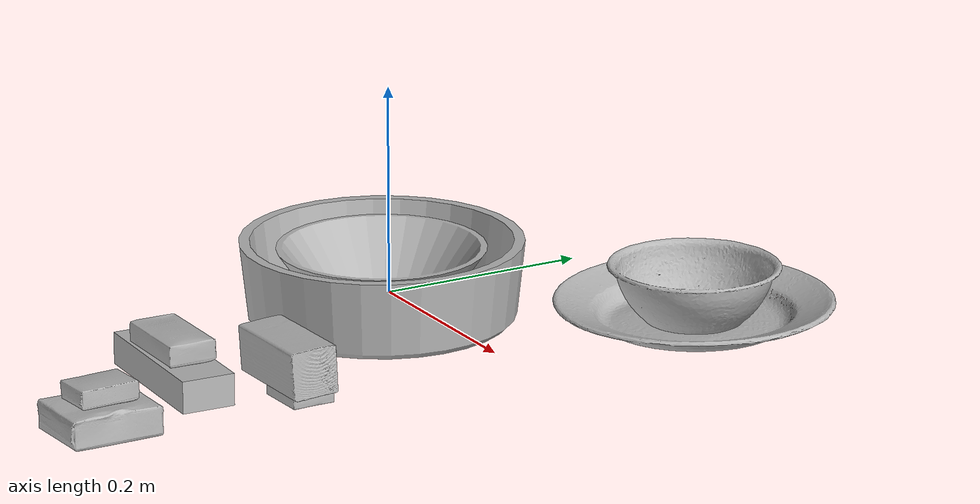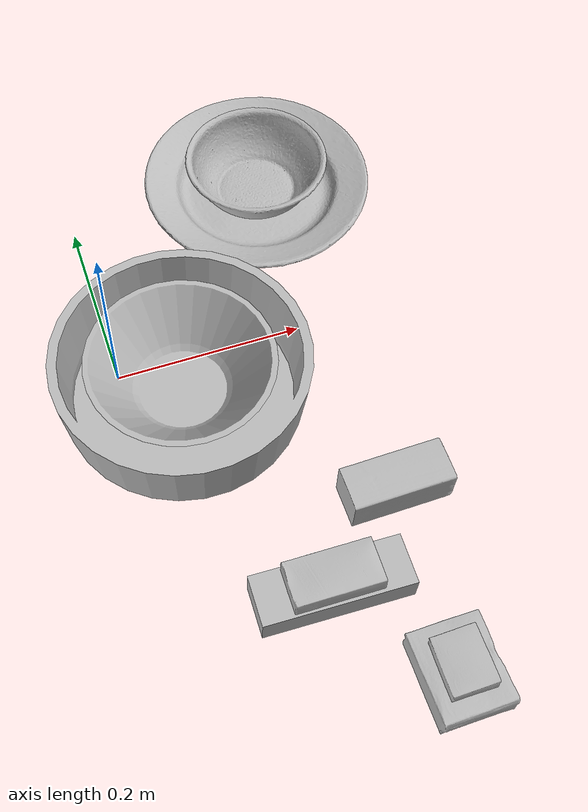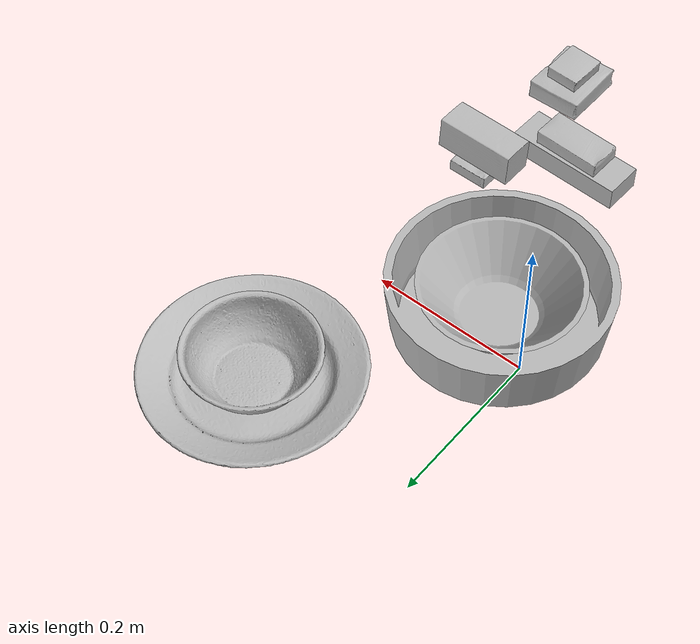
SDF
<?xml version="1.0" ?>
<sdf version="1.4">
  <world name="default">
    <light name="light1" type="point">
      <pose>0 0 1 0 0 0</pose>
      <diffuse>3 3 3 1</diffuse>
      <specular>3 3 3 1</specular>
    </light>
    <light name="light2" type="point">
      <pose>0 0.5 2 0 0 0</pose>
      <diffuse>1 1 1 1</diffuse>
      <specular>1 1 1 1</specular>
    </light>
    <light name="light3" type="point">
      <pose>0 0.5 2 0 0 0</pose>
      <diffuse>3 3 3 1</diffuse>
      <specular>3 3 3 1</specular>
    </light>
    <scene>
      <ambient>0.7 0.7 0.7</ambient>
    </scene>
    <model name="box1">
      <link name="link_box1">
        <collision name="default">
          <geometry>
            <mesh>
              <uri>model://jenga/collision_meshes/collision.obj</uri>
              <scale>1.0 1.0 1.0</scale>
            </mesh>
          </geometry>
          <surface>
            <friction>
              <ode>
                <mu>0.5</mu>
                <mu2>0.5</mu2>
              </ode>
            </friction>
          </surface>
        </collision>
        <visual name="default">
          <geometry>
            <mesh>
              <uri>model://jenga/visual_meshes/visual.dae</uri>
              <scale>1.0 1.0 1.0</scale>
            </mesh>
          </geometry>
        </visual>
        <inertial>
          <mass>0.24226053059101105</mass>
          <pose>-2.502855807051674e-07 -0.0001025000965455547 -4.092339804628864e-05 0.0 -7.34215461761844e-07 0.0</pose>
          <inertia>
            <ixx>6.703936e-05</ixx>
            <iyy>0.0004542569</iyy>
            <izz>0.00048495785</izz>
            <ixy>0</ixy>
            <ixz>0</ixz>
            <iyz>0</iyz>
          </inertia>
        </inertial>
      </link>
      <pose>0.1300041824579239 -0.2898976504802704 0.015000006183981895 2.938049914774058e-07 -1.668228407796584e-08 -0.035806934970205304</pose>
    </model>
    <model name="box11">
      <link name="link_box11">
        <collision name="default">
          <geometry>
            <mesh>
              <uri>model://sugar_box/collision_meshes/collision.obj</uri>
              <scale>0.5 0.5 0.5</scale>
            </mesh>
          </geometry>
          <surface>
            <friction>
              <ode>
                <mu>0.5</mu>
                <mu2>0.5</mu2>
              </ode>
            </friction>
          </surface>
        </collision>
        <visual name="default">
          <geometry>
            <mesh>
              <uri>model://sugar_box/visual_meshes/visual.dae</uri>
              <scale>0.5 0.5 0.5</scale>
            </mesh>
          </geometry>
        </visual>
        <inertial>
          <mass>0.06204606965184212</mass>
          <pose>0.0005171863595023751 1.9245549992774613e-05 -0.00018182402709499002 -0.0004046263588767038 0.0010506634057764815 0.0026153785560837986</pose>
          <inertia>
            <ixx>1.2924152e-05</ixx>
            <iyy>4.1773517e-05</iyy>
            <izz>5.0007893e-05</izz>
            <ixy>0</ixy>
            <ixz>0</ixz>
            <iyz>0</iyz>
          </inertia>
        </inertial>
      </link>
      <pose>0.12948846817016602 -0.2901003658771515 0.04139930009841919 0.0007819307496582052 -0.023434988304897167 -0.035345641905566015</pose>
    </model>
    <model name="box2">
      <link name="link_box2">
        <collision name="default">
          <geometry>
            <mesh>
              <uri>model://gelatin_box/collision_meshes/collision.obj</uri>
              <scale>1.0 1.0 1.0</scale>
            </mesh>
          </geometry>
          <surface>
            <friction>
              <ode>
                <mu>0.5</mu>
                <mu2>0.5</mu2>
              </ode>
            </friction>
          </surface>
        </collision>
        <visual name="default">
          <geometry>
            <mesh>
              <uri>model://gelatin_box/visual_meshes/visual.dae</uri>
              <scale>1.0 1.0 1.0</scale>
            </mesh>
          </geometry>
        </visual>
        <inertial>
          <mass>0.13706544041633606</mass>
          <pose>0.000431961816502735 0.00011156871187267825 -0.0003640321083366871 -0.0010503719975702072 -0.0047558196187974565 0.01644056506069309</pose>
          <inertia>
            <ixx>9.675702e-05</ixx>
            <iyy>6.911303e-05</iyy>
            <izz>0.00014728573</izz>
            <ixy>0</ixy>
            <ixz>0</ixz>
            <iyz>0</iyz>
          </inertia>
        </inertial>
      </link>
      <pose>0.2099551260471344 -0.4000670313835144 0.015168311074376106 0.005597425178232656 -0.007304402462270483 -0.0011962769550804913</pose>
    </model>
    <model name="box21">
      <link name="link_box21">
        <collision name="default">
          <geometry>
            <mesh>
              <uri>model://pudding_box/collision_meshes/collision.obj</uri>
              <scale>0.5 0.5 0.5</scale>
            </mesh>
          </geometry>
          <surface>
            <friction>
              <ode>
                <mu>0.5</mu>
                <mu2>0.5</mu2>
              </ode>
            </friction>
          </surface>
        </collision>
        <visual name="default">
          <geometry>
            <mesh>
              <uri>model://pudding_box/visual_meshes/visual.dae</uri>
              <scale>0.5 0.5 0.5</scale>
            </mesh>
          </geometry>
        </visual>
        <inertial>
          <mass>0.041178666055202484</mass>
          <pose>0.00024474109522998333 0.00040339428232982755 -0.00025944141088984907 0.005213101335872514 -0.006603799630434185 0.020079819569992066</pose>
          <inertia>
            <ixx>1.163759e-05</ixx>
            <iyy>7.8298535e-06</iyy>
            <izz>1.7185945e-05</izz>
            <ixy>0</ixy>
            <ixz>0</ixz>
            <iyz>0</iyz>
          </inertia>
        </inertial>
      </link>
      <pose>0.2093495875597 -0.3998301327228546 0.039604026824235916 0.012536891142409896 -0.04451078682728142 -0.010713491286105062</pose>
    </model>
    <model name="box3">
      <link name="link_box3">
        <collision name="default">
          <geometry>
            <mesh>
              <uri>model://cracker_box/collision_meshes/collision.obj</uri>
              <scale>0.25 0.25 0.25</scale>
            </mesh>
          </geometry>
          <surface>
            <friction>
              <ode>
                <mu>0.5</mu>
                <mu2>0.5</mu2>
              </ode>
            </friction>
          </surface>
        </collision>
        <visual name="default">
          <geometry>
            <mesh>
              <uri>model://cracker_box/visual_meshes/visual.dae</uri>
              <scale>0.25 0.25 0.25</scale>
            </mesh>
          </geometry>
        </visual>
        <inertial>
          <mass>0.02017100155353546</mass>
          <pose>0.00023660367878619581 6.358561222441494e-05 -0.00042573839891701937 -0.0003162077973682912 -0.011106487737506417 0.0025467945369474112</pose>
          <inertia>
            <ixx>3.2066264e-06</ixx>
            <iyy>5.2947703e-06</iyy>
            <izz>7.556123e-06</izz>
            <ixy>0</ixy>
            <ixz>0</ixz>
            <iyz>0</iyz>
          </inertia>
        </inertial>
      </link>
      <pose>0.2199438214302063 -0.21006570756435394 0.00925968587398529 0.013528859950302778 -0.007445810206406651 0.0020473927177033086</pose>
    </model>
    <model name="box31">
      <link name="link_box31">
        <collision name="default">
          <geometry>
            <mesh>
              <uri>model://wood_block/collision_meshes/collision.obj</uri>
              <scale>0.5 0.5 0.5</scale>
            </mesh>
          </geometry>
          <surface>
            <friction>
              <ode>
                <mu>0.5</mu>
                <mu2>0.5</mu2>
              </ode>
            </friction>
          </surface>
        </collision>
        <visual name="default">
          <geometry>
            <mesh>
              <uri>model://wood_block/visual_meshes/visual.dae</uri>
              <scale>0.5 0.5 0.5</scale>
            </mesh>
          </geometry>
        </visual>
        <inertial>
          <mass>0.1962708830833435</mass>
          <pose>-2.9066577553749084e-06 -0.000285404734313488 0.00013204291462898254 -0.05220969561834339 -0.0051926963065425085 -0.006861379449261536</pose>
          <inertia>
            <ixx>6.566003e-05</ixx>
            <iyy>0.00020742005</iyy>
            <izz>0.00020664421</izz>
            <ixy>0</ixy>
            <ixz>0</ixz>
            <iyz>0</iyz>
          </inertia>
        </inertial>
      </link>
      <pose>0.21949508786201477 -0.22080543637275696 0.04027210548520088 0.046340582095301154 -0.020999243956597535 0.0026331956617793584</pose>
    </model>
    <model name="plate1">
      <link name="link_plate1">
        <collision name="default">
          <geometry>
            <mesh>
              <uri>model://plate/collision_meshes/collision.obj</uri>
              <scale>1.0 1.0 1.0</scale>
            </mesh>
          </geometry>
          <surface>
            <friction>
              <ode>
                <mu>0.5</mu>
                <mu2>0.5</mu2>
              </ode>
            </friction>
          </surface>
        </collision>
        <visual name="default">
          <geometry>
            <mesh>
              <uri>model://plate/visual_meshes/visual.dae</uri>
              <scale>1.0 1.0 1.0</scale>
            </mesh>
          </geometry>
        </visual>
        <inertial>
          <mass>0.17345036566257477</mass>
          <pose>-0.0006044625188224018 0.00027825802681036294 -0.0010561991948634386 0.0022187574415082918 -0.0032254973035065115 0.4526175972404713</pose>
          <inertia>
            <ixx>0.00081140426</ixx>
            <iyy>0.0008036436</iyy>
            <izz>0.0015869853</izz>
            <ixy>0</ixy>
            <ixz>0</ixz>
            <iyz>0</iyz>
          </inertia>
        </inertial>
      </link>
      <pose>0.2200000286102295 0.20000000298023224 0.013732998631894588 1.2864984184034269e-08 -2.2100803395877445e-08 -0.021104330101018254</pose>
    </model>
    <model name="bowl1">
      <link name="link_bowl1">
        <collision name="default">
          <geometry>
            <mesh>
              <uri>model://bowl/collision_meshes/collision.obj</uri>
              <scale>1.0 1.0 1.0</scale>
            </mesh>
          </geometry>
          <surface>
            <friction>
              <ode>
                <mu>0.5</mu>
                <mu2>0.5</mu2>
              </ode>
            </friction>
          </surface>
        </collision>
        <visual name="default">
          <geometry>
            <mesh>
              <uri>model://bowl/visual_meshes/visual.dae</uri>
              <scale>1.0 1.0 1.0</scale>
            </mesh>
          </geometry>
        </visual>
        <inertial>
          <mass>0.11633910983800888</mass>
          <pose>0.00020445004338398576 -0.0010302083101123571 -0.0008042659610509872 -0.01576420252076368 0.01454664289610389 0.7140315541596068</pose>
          <inertia>
            <ixx>0.0002672402</ixx>
            <iyy>0.000261269</iyy>
            <izz>0.00044958986</izz>
            <ixy>0</ixy>
            <ixz>0</ixz>
            <iyz>0</iyz>
          </inertia>
        </inertial>
      </link>
      <pose>0.21975496411323547 0.20001325011253357 0.03186102584004402 0.001645016976188803 -0.010062538804006982 -0.23821358365146364</pose>
    </model>
    <model name="plate2">
      <link name="link_plate2">
        <collision name="default">
          <geometry>
            <mesh>
              <uri>model://pan_tefal/collision_meshes/collision.obj</uri>
              <scale>1.0 1.0 1.0</scale>
            </mesh>
          </geometry>
          <surface>
            <friction>
              <ode>
                <mu>0.5</mu>
                <mu2>0.5</mu2>
              </ode>
            </friction>
          </surface>
        </collision>
        <visual name="default">
          <geometry>
            <mesh>
              <uri>model://pan_tefal/visual_meshes/visual.dae</uri>
              <scale>1.0 1.0 1.0</scale>
            </mesh>
          </geometry>
        </visual>
        <inertial>
          <mass>0.6251956820487976</mass>
          <pose>-0.00018002417345996946 3.279016891610809e-05 -0.00851493515074253 0.0008190253681579672 -0.00033013925853852665 -0.331857454583129</pose>
          <inertia>
            <ixx>0.004315697</ixx>
            <iyy>0.00434352</iyy>
            <izz>0.007944365</izz>
            <ixy>0</ixy>
            <ixz>0</ixz>
            <iyz>0</iyz>
          </inertia>
        </inertial>
      </link>
      <pose>0.06000559777021408 -0.04008934274315834 0.03805001452565193 7.662791186665086e-09 -9.960763947888209e-09 -0.01335678530624818</pose>
    </model>
    <model name="bowl2">
      <link name="link_bowl2">
        <collision name="default">
          <geometry>
            <mesh>
              <uri>model://bowl_a/collision_meshes/collision.obj</uri>
              <scale>1.0 1.0 1.0</scale>
            </mesh>
          </geometry>
          <surface>
            <friction>
              <ode>
                <mu>0.5</mu>
                <mu2>0.5</mu2>
              </ode>
            </friction>
          </surface>
        </collision>
        <visual name="default">
          <geometry>
            <mesh>
              <uri>model://bowl_a/visual_meshes/visual.dae</uri>
              <scale>1.0 1.0 1.0</scale>
            </mesh>
          </geometry>
        </visual>
        <inertial>
          <mass>0.3434441387653351</mass>
          <pose>0.0002786742115858942 4.731103399535641e-05 -0.0013765294570475817 -0.000980532155977885 -0.0010938290454026757 -0.191241060811112</pose>
          <inertia>
            <ixx>0.0009778013</ixx>
            <iyy>0.0009838042</iyy>
            <izz>0.0017390571</izz>
            <ixy>0</ixy>
            <ixz>0</ixz>
            <iyz>0</iyz>
          </inertia>
        </inertial>
      </link>
      <pose>0.05950872227549553 -0.04011182114481926 0.038047630339860916 0.0001576781621077032 0.0005529199172954507 -0.13025820966239662</pose>
    </model>
  </world>
</sdf>
